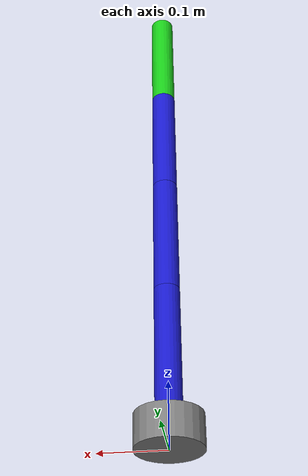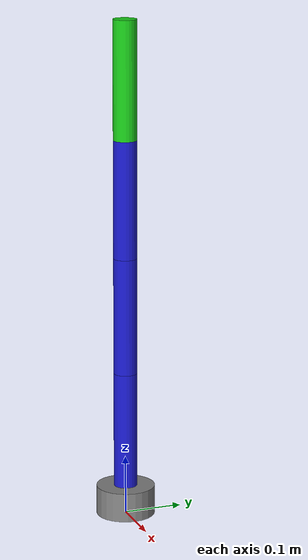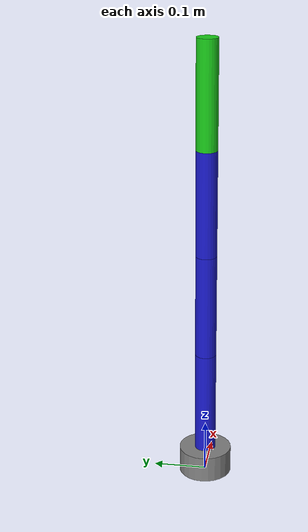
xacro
<?xml version="1.0"?>
<robot xmlns:xacro="http://www.ros.org/wiki/xacro" name="snake_arm">

    <xacro:property name="link_length" value="0.2" />
    <xacro:property name="link_radius" value="0.02" />
    <xacro:property name="joint_limit" value="1.57" />
    <material name="blue"><color rgba="0.1 0.1 0.8 1.0"/></material>
    <material name="green"><color rgba="0.1 0.8 0.1 1.0"/></material>
    <material name="grey"><color rgba="0.5 0.5 0.5 1.0"/></material>

    <link name="world" />
    <link name="base_link">
        <inertial><mass value="0.5" /><inertia ixx="0.001" ixy="0" ixz="0" iyy="0.001" iyz="0" izz="0.001" /></inertial>
        <visual><geometry><cylinder radius="0.05" length="0.05" /></geometry><material name="grey"/></visual>
        <collision><geometry><cylinder radius="0.05" length="0.05" /></geometry></collision>
    </link>
    <joint name="world_to_base" type="fixed"><parent link="world" /><child link="base_link" /><origin xyz="0 0 0.025" rpy="0 0 0" /></joint>

    <link name="link_1">
        <inertial><mass value="0.1" /><origin xyz="0 0 ${link_length/2}"/><inertia ixx="0.0001" ixy="0" ixz="0" iyy="0.0001" iyz="0" izz="0.0001" /></inertial>
        <visual><origin xyz="0 0 ${link_length/2}"/><geometry><cylinder radius="${link_radius}" length="${link_length}" /></geometry><material name="blue"/></visual>
        <collision><origin xyz="0 0 ${link_length/2}"/><geometry><cylinder radius="${link_radius}" length="${link_length}" /></geometry></collision>
    </link>
    <joint name="roll_1_joint" type="revolute">
        <parent link="base_link" />
        <child link="link_1" />
        <origin xyz="0 0 ${0.05/2}" rpy="0 0 0" />
        <axis xyz="1 0 0" />
        <limit lower="-${joint_limit}" upper="${joint_limit}" effort="10" velocity="1" />
    </joint>

    <link name="link_2">
        <inertial><mass value="0.1" /><origin xyz="0 0 ${link_length/2}"/><inertia ixx="0.0001" ixy="0" ixz="0" iyy="0.0001" iyz="0" izz="0.0001" /></inertial>
        <visual><origin xyz="0 0 ${link_length/2}"/><geometry><cylinder radius="${link_radius}" length="${link_length}" /></geometry><material name="blue"/></visual>
        <collision><origin xyz="0 0 ${link_length/2}"/><geometry><cylinder radius="${link_radius}" length="${link_length}" /></geometry></collision>
    </link>
    <joint name="pitch_1_joint" type="revolute">
        <parent link="link_1" />
        <child link="link_2" />
        <origin xyz="0 0 ${link_length}" rpy="0 0 0" />
        <axis xyz="0 1 0" />
        <limit lower="-${joint_limit}" upper="${joint_limit}" effort="10" velocity="1" />
    </joint>

    <link name="link_3">
        <inertial><mass value="0.1" /><origin xyz="0 0 ${link_length/2}"/><inertia ixx="0.0001" ixy="0" ixz="0" iyy="0.0001" iyz="0" izz="0.0001" /></inertial>
        <visual><origin xyz="0 0 ${link_length/2}"/><geometry><cylinder radius="${link_radius}" length="${link_length}" /></geometry><material name="blue"/></visual>
        <collision><origin xyz="0 0 ${link_length/2}"/><geometry><cylinder radius="${link_radius}" length="${link_length}" /></geometry></collision>
    </link>
    <joint name="roll_2_joint" type="revolute">
        <parent link="link_2" />
        <child link="link_3" />
        <origin xyz="0 0 ${link_length}" rpy="0 0 0" />
        <axis xyz="1 0 0" />
        <limit lower="-${joint_limit}" upper="${joint_limit}" effort="10" velocity="1" />
    </joint>

    <link name="link_4">
        <inertial><mass value="0.1" /><origin xyz="0 0 ${link_length/2}"/><inertia ixx="0.0001" ixy="0" ixz="0" iyy="0.0001" iyz="0" izz="0.0001" /></inertial>
        <visual><origin xyz="0 0 ${link_length/2}"/><geometry><cylinder radius="${link_radius}" length="${link_length}" /></geometry><material name="green"/></visual>
        <collision><origin xyz="0 0 ${link_length/2}"/><geometry><cylinder radius="${link_radius}" length="${link_length}" /></geometry></collision>
    </link>
    <joint name="pitch_2_joint" type="revolute">
        <parent link="link_3" />
        <child link="link_4" />
        <origin xyz="0 0 ${link_length}" rpy="0 0 0" />
        <axis xyz="0 1 0" />
        <limit lower="-${joint_limit}" upper="${joint_limit}" effort="10" velocity="1" />
    </joint>

    <ros2_control name="GazeboSystem" type="system">
        <hardware>
            <plugin>gazebo_ros2_control/GazeboSystem</plugin>
        </hardware>
        <joint name="roll_1_joint">
            <command_interface name="position"><param name="min">-1.57</param><param name="max">1.57</param></command_interface>
            <state_interface name="position"/><state_interface name="velocity"/>
        </joint>
        <joint name="pitch_1_joint">
            <command_interface name="position"><param name="min">-1.57</param><param name="max">1.57</param></command_interface>
            <state_interface name="position"/><state_interface name="velocity"/>
        </joint>
        <joint name="roll_2_joint">
            <command_interface name="position"><param name="min">-1.57</param><param name="max">1.57</param></command_interface>
            <state_interface name="position"/><state_interface name="velocity"/>
        </joint>
        <joint name="pitch_2_joint">
            <command_interface name="position"><param name="min">-1.57</param><param name="max">1.57</param></command_interface>
            <state_interface name="position"/><state_interface name="velocity"/>
        </joint>
    </ros2_control>

    <gazebo>
        <plugin name="gazebo_ros2_control" filename="libgazebo_ros2_control.so">
            <parameters>$(find snake_arm_description)/config/snake_arm_controllers.yaml</parameters>
        </plugin>
    </gazebo>
</robot>
